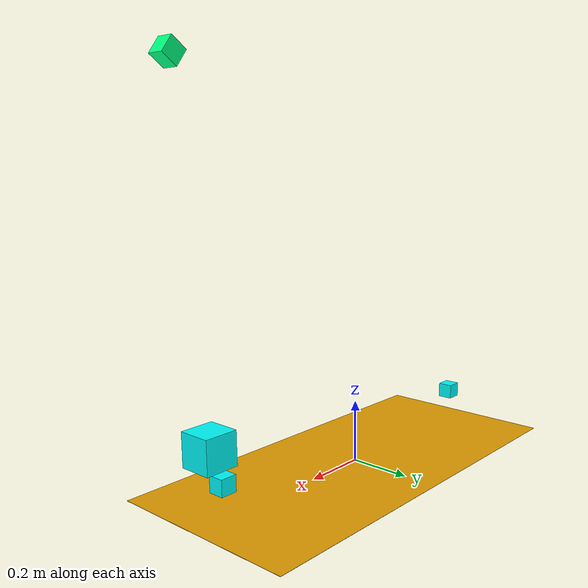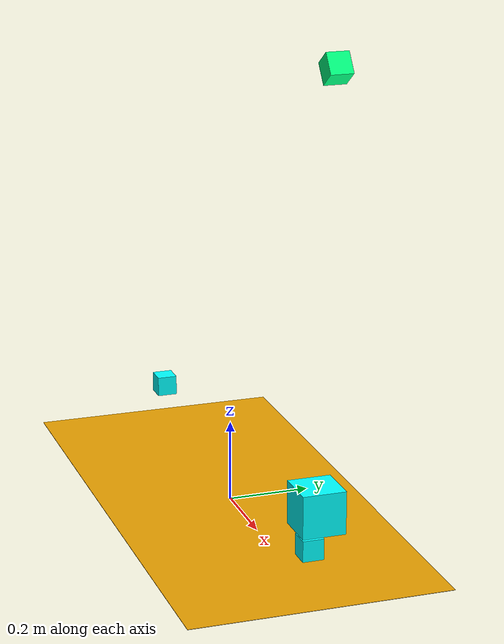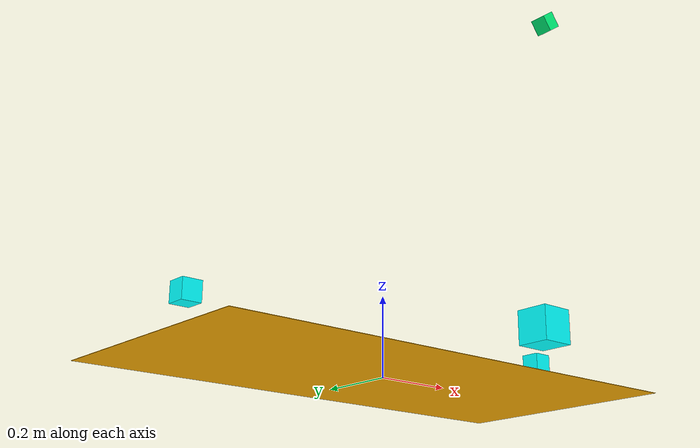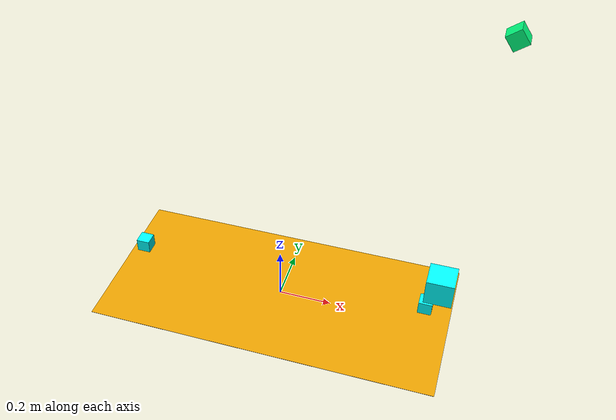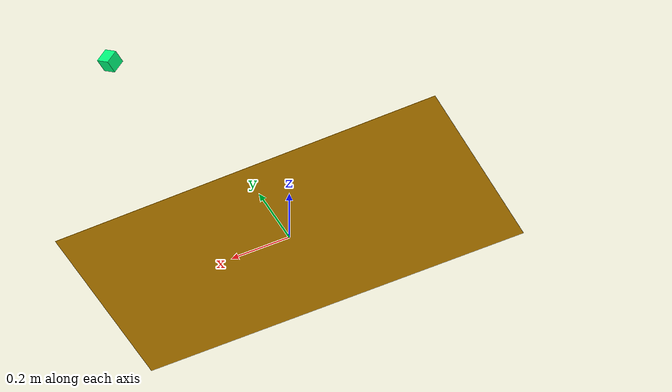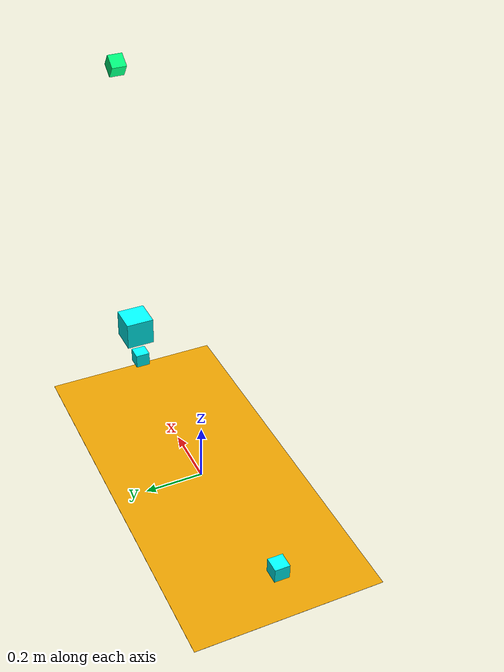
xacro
<?xml version="1.0"?>
<robot xmlns:xacro="http://ros.org/wiki/xacro"
		name="lxind">

	<!-- const -->
	<xacro:property name="M_PI" value="3.1415926" />

    <!-- large picking robot -->

	<!-- base -->
	<link name="base_footprint">
		<visual>
			<geometry>
				<box size="1.3 0.625 0.001" />
			</geometry>
		</visual>
	</link>

	<link name="base_link">
		<visual>
			<geometry>
				<box size="1.3 0.625 0.001" />
			</geometry>
			<material name="green">
				<color rgba="0 1 0 1" />
			</material>
		</visual>
	</link>

	<link name="laser_link">
		<visual>
			<geometry>
				<box size="0.1 0.1 0.1" />
			</geometry>
			<material name="gb">
				<color rgba="0 1 1 1" />
			</material>
		</visual>
	</link>

	<link name="front_laser_link">
		<visual>
			<geometry>
				<box size="0.05 0.05 0.05" />
			</geometry>
			<material name="gb">
				<color rgba="0 1 1 1" />
			</material>
		</visual>
	</link>
	<link name="back_laser_link">
		<visual>
			<geometry>
				<box size="0.05 0.05 0.05" />
			</geometry>
			<material name="gb">
				<color rgba="0 1 1 1" />
			</material>
		</visual>
	</link>

<!-- ifm camera -->
	<link name="ifm3d/camera_link">
		<visual>
			<geometry>
				<box size="0.05 0.05 0.05" />
			</geometry>
			<material name="g05b">
				<color rgba="0 1 0.5 1" />
			</material>
		</visual>
	</link>

<!-- JOINTS -->
	<joint name="base_joint" type="fixed">
		<origin rpy="0 0 0" xyz="0 0 0" />   <!-- AT TOP SURF===> NOW: FLOOR same, ground -->
		<parent link="base_footprint" />
		<child link="base_link" />
	</joint>

	<joint name="base_laser_joint" type="fixed">
		<origin rpy="${M_PI} 0 0" xyz="0.595 0 0.22" />   <!-- xy offset from centre of driving wheel -->
		<parent link="base_link" />
		<child link="laser_link" />
	</joint>

	<joint name="base_front_laser_joint" type="fixed">
		<origin rpy="0 0 0" xyz="0.555 0 0.11" />   <!-- xy offset from centre of driving wheel -->
		<parent link="base_link" />
		<child link="front_laser_link" />
	</joint>
	<joint name="base_back_laser_joint" type="fixed">
		<origin rpy="0 0 ${M_PI}" xyz="-0.555 0 0.11" />   <!-- xy offset from centre of driving wheel -->
		<parent link="base_link" />
		<child link="back_laser_link" />
	</joint>

	<joint name="base_ifm_joint" type="fixed">
		<origin rpy="${-M_PI/2} ${M_PI*0.7} ${M_PI}" xyz="0.67 0.00 1.2" /> <!-- around red/green/blue axis -->
            <!--  around y axis(minus ->toward ground), x(ros axis), z  ${M_PI/4} -->
		<parent link="base_link" />
		<child link="ifm3d/camera_link" />
	</joint>

</robot>
